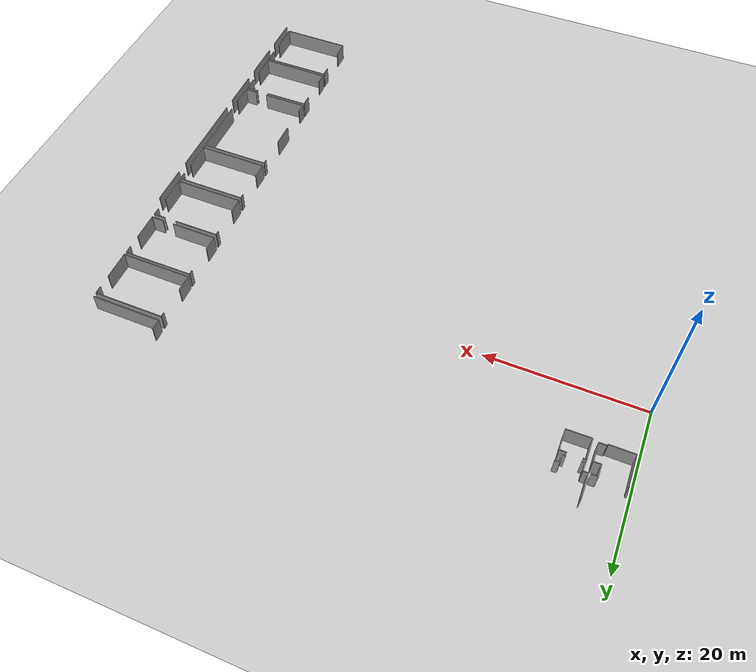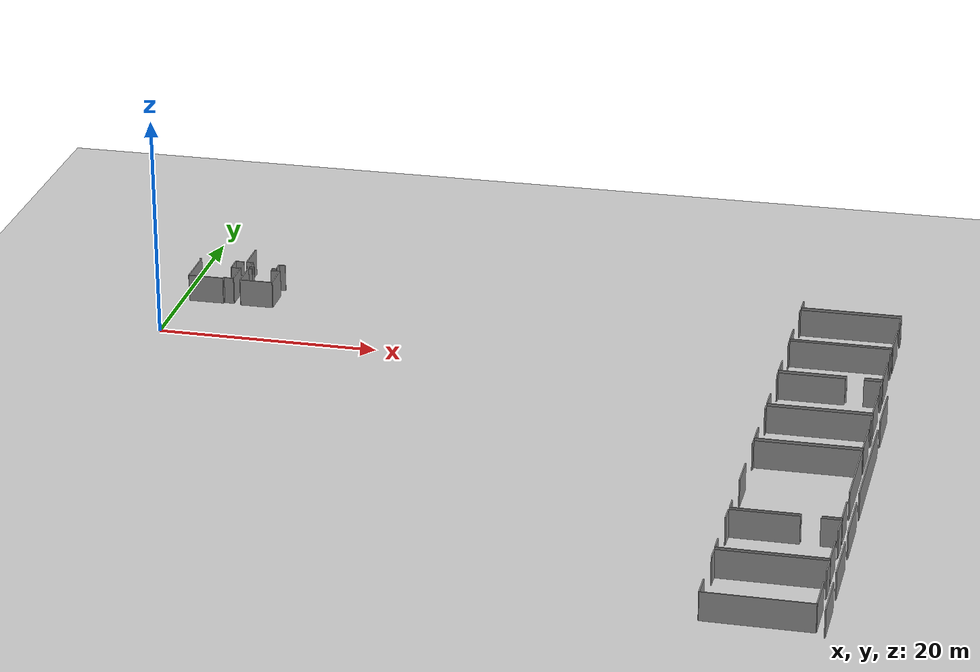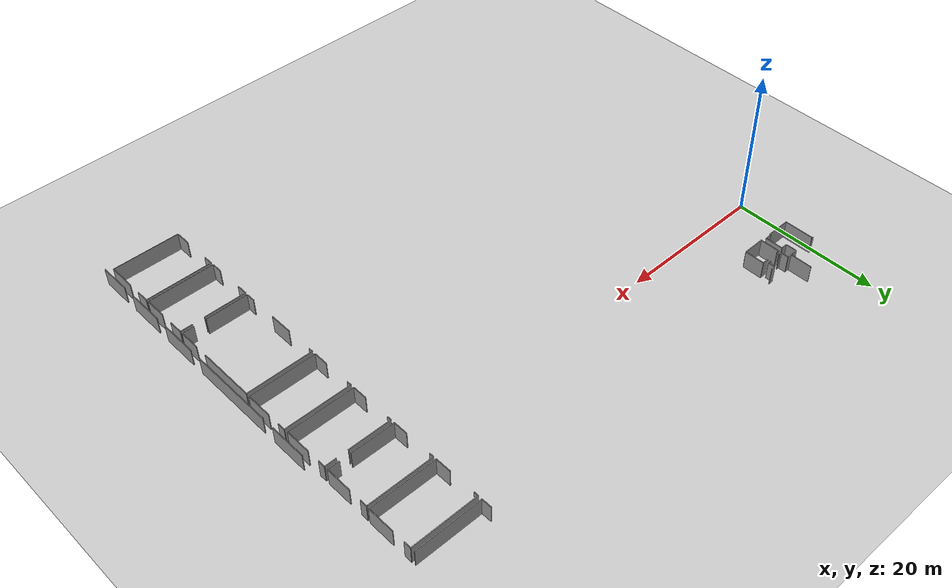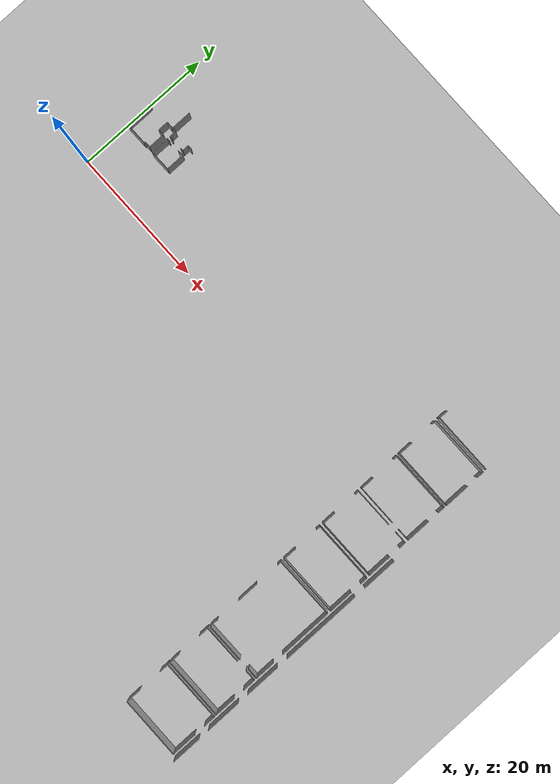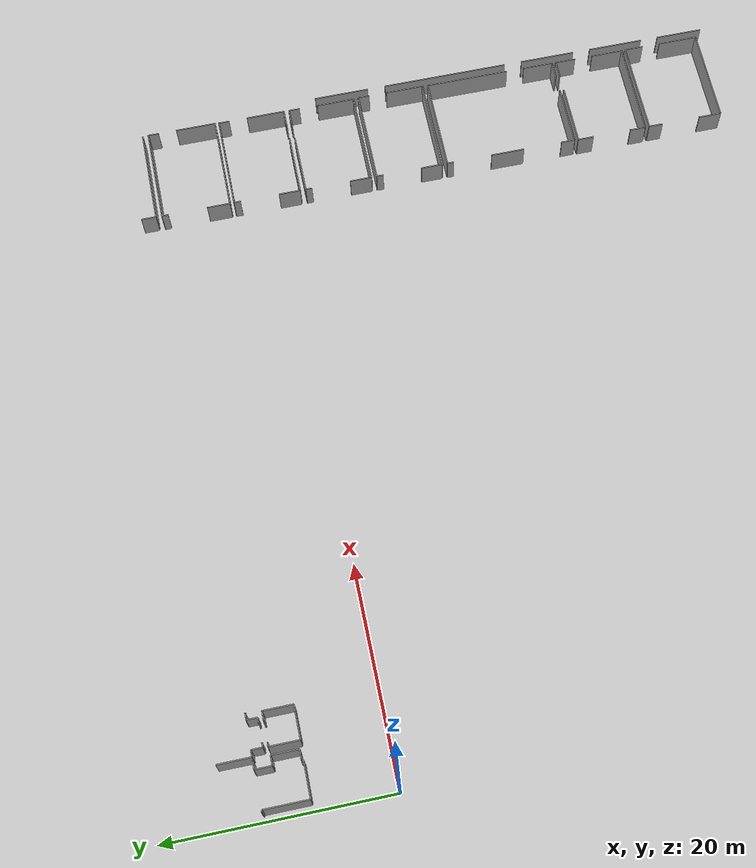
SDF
<sdf version="1.6">
 <world name="default">
  <model name="ground_plane">
   <static>1</static>
   <link name="link">
    <collision name="collision">
     <geometry><plane><normal>0 0 1</normal><size>100 100</size></plane></geometry>
     <surface><friction><ode><mu>100</mu><mu2>50</mu2></ode></friction></surface>
    </collision>
    <visual name="visual">
     <cast_shadows>0</cast_shadows>
     <geometry><plane><normal>0 0 1</normal><size>100 100</size></plane></geometry>
     <material>
      <script><uri>file://media/materials/scripts/gazebo.material</uri><name>Gazebo/Grey</name></script>
     </material>
    </visual>
   </link>
  </model>
  <model name="0510035737_A_40_1_105">
   <static>1</static>
   <link name="Wall_152">
    <collision name="Wall_152_Collision">
     <geometry><box><size>0.780401004099 0.1 2.5</size></box></geometry>
     <pose>0.39020050205 0 1.25 0 0 0</pose>
    </collision>
    <visual name="Wall_152_Visual">
     <pose>0.39020050205 0 1.25 0 0 0</pose>
     <geometry><box><size>0.780401004099 0.1 2.5</size></box></geometry>
     <material>
      <script><uri>file://media/materials/scripts/gazebo.material</uri><name>Gazebo/Grey</name></script>
      <ambient>1 1 1 1</ambient>
     </material>
    </visual>
    <pose>84.8583140034 -34.6795462489 0 0 0 3.14159265359</pose>
   </link>
   <link name="Wall_153">
    <collision name="Wall_153_Collision">
     <geometry><box><size>1.49470941502 0.1 2.5</size></box></geometry>
     <pose>0.747354707508 0 1.25 0 0 0</pose>
    </collision>
    <visual name="Wall_153_Visual">
     <pose>0.747354707508 0 1.25 0 0 0</pose>
     <geometry><box><size>1.49470941502 0.1 2.5</size></box></geometry>
     <material>
      <script><uri>file://media/materials/scripts/gazebo.material</uri><name>Gazebo/Grey</name></script>
      <ambient>1 1 1 1</ambient>
     </material>
    </visual>
    <pose>84.0779129993 -34.6795462489 0 0 0 -1.57079632679</pose>
   </link>
   <link name="Wall_154">
    <collision name="Wall_154_Collision">
     <geometry><box><size>0.878523084745 0.1 2.5</size></box></geometry>
     <pose>0.439261542372 0 1.25 0 0 0</pose>
    </collision>
    <visual name="Wall_154_Visual">
     <pose>0.439261542372 0 1.25 0 0 0</pose>
     <geometry><box><size>0.878523084745 0.1 2.5</size></box></geometry>
     <material>
      <script><uri>file://media/materials/scripts/gazebo.material</uri><name>Gazebo/Grey</name></script>
      <ambient>1 1 1 1</ambient>
     </material>
    </visual>
    <pose>84.0779129993 -36.1742556639 0 0 0 0.0</pose>
   </link>
   <link name="Wall_155">
    <collision name="Wall_155_Collision">
     <geometry><box><size>2.38340059102 0.1 2.5</size></box></geometry>
     <pose>1.19170029551 0 1.25 0 0 0</pose>
    </collision>
    <visual name="Wall_155_Visual">
     <pose>1.19170029551 0 1.25 0 0 0</pose>
     <geometry><box><size>2.38340059102 0.1 2.5</size></box></geometry>
     <material>
      <script><uri>file://media/materials/scripts/gazebo.material</uri><name>Gazebo/Grey</name></script>
      <ambient>1 1 1 1</ambient>
     </material>
    </visual>
    <pose>84.956436084 -36.1742556639 0 0 0 -1.57079632679</pose>
   </link>
   <link name="Wall_156">
    <collision name="Wall_156_Collision">
     <geometry><box><size>0.886149153189 0.1 2.5</size></box></geometry>
     <pose>0.443074576594 0 1.25 0 0 0</pose>
    </collision>
    <visual name="Wall_156_Visual">
     <pose>0.443074576594 0 1.25 0 0 0</pose>
     <geometry><box><size>0.886149153189 0.1 2.5</size></box></geometry>
     <material>
      <script><uri>file://media/materials/scripts/gazebo.material</uri><name>Gazebo/Grey</name></script>
      <ambient>1 1 1 1</ambient>
     </material>
    </visual>
    <pose>84.956436084 -38.557656255 0 0 0 3.14159265359</pose>
   </link>
   <link name="Wall_157">
    <collision name="Wall_157_Collision">
     <geometry><box><size>0.17955428395 0.1 2.5</size></box></geometry>
     <pose>0.089777141975 0 1.25 0 0 0</pose>
    </collision>
    <visual name="Wall_157_Visual">
     <pose>0.089777141975 0 1.25 0 0 0</pose>
     <geometry><box><size>0.17955428395 0.1 2.5</size></box></geometry>
     <material>
      <script><uri>file://media/materials/scripts/gazebo.material</uri><name>Gazebo/Grey</name></script>
      <ambient>1 1 1 1</ambient>
     </material>
    </visual>
    <pose>84.0702869308 -38.557656255 0 0 0 -2.01101567095</pose>
   </link>
   <link name="Wall_158">
    <collision name="Wall_158_Collision">
     <geometry><box><size>3.19710209399 0.1 2.5</size></box></geometry>
     <pose>1.598551047 0 1.25 0 0 0</pose>
    </collision>
    <visual name="Wall_158_Visual">
     <pose>1.598551047 0 1.25 0 0 0</pose>
     <geometry><box><size>3.19710209399 0.1 2.5</size></box></geometry>
     <material>
      <script><uri>file://media/materials/scripts/gazebo.material</uri><name>Gazebo/Grey</name></script>
      <ambient>1 1 1 1</ambient>
     </material>
    </visual>
    <pose>83.9937720441 -38.7200915128 0 0 0 3.14159265359</pose>
   </link>
   <link name="Wall_159">
    <collision name="Wall_159_Collision">
     <geometry><box><size>3.93098408058 0.1 2.5</size></box></geometry>
     <pose>1.96549204029 0 1.25 0 0 0</pose>
    </collision>
    <visual name="Wall_159_Visual">
     <pose>1.96549204029 0 1.25 0 0 0</pose>
     <geometry><box><size>3.93098408058 0.1 2.5</size></box></geometry>
     <material>
      <script><uri>file://media/materials/scripts/gazebo.material</uri><name>Gazebo/Grey</name></script>
      <ambient>1 1 1 1</ambient>
     </material>
    </visual>
    <pose>80.7966699501 -38.7200915128 0 0 0 1.57079632679</pose>
   </link>
   <link name="Wall_160">
    <collision name="Wall_160_Collision">
     <geometry><box><size>0.177620649564 0.1 2.5</size></box></geometry>
     <pose>0.0888103247819 0 1.25 0 0 0</pose>
    </collision>
    <visual name="Wall_160_Visual">
     <pose>0.0888103247819 0 1.25 0 0 0</pose>
     <geometry><box><size>0.177620649564 0.1 2.5</size></box></geometry>
     <material>
      <script><uri>file://media/materials/scripts/gazebo.material</uri><name>Gazebo/Grey</name></script>
      <ambient>1 1 1 1</ambient>
     </material>
    </visual>
    <pose>80.7966699501 -34.7891074322 0 0 0 2.53731518699</pose>
   </link>
   <link name="Wall_193">
    <collision name="Wall_193_Collision">
     <geometry><box><size>2.97213307489 0.1 2.5</size></box></geometry>
     <pose>1.48606653745 0 1.25 0 0 0</pose>
    </collision>
    <visual name="Wall_193_Visual">
     <pose>1.48606653745 0 1.25 0 0 0</pose>
     <geometry><box><size>2.97213307489 0.1 2.5</size></box></geometry>
     <material>
      <script><uri>file://media/materials/scripts/gazebo.material</uri><name>Gazebo/Grey</name></script>
      <ambient>1 1 1 1</ambient>
     </material>
    </visual>
    <pose>85.1120078803 -34.677766833 0 0 0 1.57079632679</pose>
   </link>
   <link name="Wall_202">
    <collision name="Wall_202_Collision">
     <geometry><box><size>0.597883766007 0.1 2.5</size></box></geometry>
     <pose>0.298941883003 0 1.25 0 0 0</pose>
    </collision>
    <visual name="Wall_202_Visual">
     <pose>0.298941883003 0 1.25 0 0 0</pose>
     <geometry><box><size>0.597883766007 0.1 2.5</size></box></geometry>
     <material>
      <script><uri>file://media/materials/scripts/gazebo.material</uri><name>Gazebo/Grey</name></script>
      <ambient>1 1 1 1</ambient>
     </material>
    </visual>
    <pose>88.8022624003 -34.7260652664 0 0 0 3.14159265359</pose>
   </link>
   <link name="Wall_203">
    <collision name="Wall_203_Collision">
     <geometry><box><size>0.944615677926 0.1 2.5</size></box></geometry>
     <pose>0.472307838963 0 1.25 0 0 0</pose>
    </collision>
    <visual name="Wall_203_Visual">
     <pose>0.472307838963 0 1.25 0 0 0</pose>
     <geometry><box><size>0.944615677926 0.1 2.5</size></box></geometry>
     <material>
      <script><uri>file://media/materials/scripts/gazebo.material</uri><name>Gazebo/Grey</name></script>
      <ambient>1 1 1 1</ambient>
     </material>
    </visual>
    <pose>88.2043786343 -34.7260652664 0 0 0 -1.57079632679</pose>
   </link>
   <link name="Wall_204">
    <collision name="Wall_204_Collision">
     <geometry><box><size>0.406723650345 0.1 2.5</size></box></geometry>
     <pose>0.203361825172 0 1.25 0 0 0</pose>
    </collision>
    <visual name="Wall_204_Visual">
     <pose>0.203361825172 0 1.25 0 0 0</pose>
     <geometry><box><size>0.406723650345 0.1 2.5</size></box></geometry>
     <material>
      <script><uri>file://media/materials/scripts/gazebo.material</uri><name>Gazebo/Grey</name></script>
      <ambient>1 1 1 1</ambient>
     </material>
    </visual>
    <pose>88.2043786343 -35.6706809444 0 0 0 3.14159265359</pose>
   </link>
   <link name="Wall_205">
    <collision name="Wall_205_Collision">
     <geometry><box><size>0.397318165931 0.1 2.5</size></box></geometry>
     <pose>0.198659082965 0 1.25 0 0 0</pose>
    </collision>
    <visual name="Wall_205_Visual">
     <pose>0.198659082965 0 1.25 0 0 0</pose>
     <geometry><box><size>0.397318165931 0.1 2.5</size></box></geometry>
     <material>
      <script><uri>file://media/materials/scripts/gazebo.material</uri><name>Gazebo/Grey</name></script>
      <ambient>1 1 1 1</ambient>
     </material>
    </visual>
    <pose>86.1011089575 -35.6706809444 0 0 0 3.14159265359</pose>
   </link>
   <link name="Wall_206">
    <collision name="Wall_206_Collision">
     <geometry><box><size>0.991134695434 0.1 2.5</size></box></geometry>
     <pose>0.495567347717 0 1.25 0 0 0</pose>
    </collision>
    <visual name="Wall_206_Visual">
     <pose>0.495567347717 0 1.25 0 0 0</pose>
     <geometry><box><size>0.991134695434 0.1 2.5</size></box></geometry>
     <material>
      <script><uri>file://media/materials/scripts/gazebo.material</uri><name>Gazebo/Grey</name></script>
      <ambient>1 1 1 1</ambient>
     </material>
    </visual>
    <pose>85.7037907915 -35.6706809444 0 0 0 1.57079632679</pose>
   </link>
   <link name="Wall_207">
    <collision name="Wall_207_Collision">
     <geometry><box><size>0.591785586484 0.1 2.5</size></box></geometry>
     <pose>0.295892793242 0 1.25 0 0 0</pose>
    </collision>
    <visual name="Wall_207_Visual">
     <pose>0.295892793242 0 1.25 0 0 0</pose>
     <geometry><box><size>0.591785586484 0.1 2.5</size></box></geometry>
     <material>
      <script><uri>file://media/materials/scripts/gazebo.material</uri><name>Gazebo/Grey</name></script>
      <ambient>1 1 1 1</ambient>
     </material>
    </visual>
    <pose>85.7037907915 -34.6795462489 0 0 0 3.1385857898</pose>
   </link>
   <link name="Wall_208">
    <collision name="Wall_208_Collision">
     <geometry><box><size>2.67039496679 0.1 2.5</size></box></geometry>
     <pose>1.3351974834 0 1.25 0 0 0</pose>
    </collision>
    <visual name="Wall_208_Visual">
     <pose>1.3351974834 0 1.25 0 0 0</pose>
     <geometry><box><size>2.67039496679 0.1 2.5</size></box></geometry>
     <material>
      <script><uri>file://media/materials/scripts/gazebo.material</uri><name>Gazebo/Grey</name></script>
      <ambient>1 1 1 1</ambient>
     </material>
    </visual>
    <pose>85.6651520447 -38.7734739919 0 0 0 1.57079632679</pose>
   </link>
   <link name="Wall_209">
    <collision name="Wall_209_Collision">
     <geometry><box><size>0.373677353754 0.1 2.5</size></box></geometry>
     <pose>0.186838676877 0 1.25 0 0 0</pose>
    </collision>
    <visual name="Wall_209_Visual">
     <pose>0.186838676877 0 1.25 0 0 0</pose>
     <geometry><box><size>0.373677353754 0.1 2.5</size></box></geometry>
     <material>
      <script><uri>file://media/materials/scripts/gazebo.material</uri><name>Gazebo/Grey</name></script>
      <ambient>1 1 1 1</ambient>
     </material>
    </visual>
    <pose>85.6651520447 -36.1030790251 0 0 0 0.0</pose>
   </link>
   <link name="Wall_210">
    <collision name="Wall_210_Collision">
     <geometry><box><size>0.846239394999 0.1 2.5</size></box></geometry>
     <pose>0.423119697499 0 1.25 0 0 0</pose>
    </collision>
    <visual name="Wall_210_Visual">
     <pose>0.423119697499 0 1.25 0 0 0</pose>
     <geometry><box><size>0.846239394999 0.1 2.5</size></box></geometry>
     <material>
      <script><uri>file://media/materials/scripts/gazebo.material</uri><name>Gazebo/Grey</name></script>
      <ambient>1 1 1 1</ambient>
     </material>
    </visual>
    <pose>87.8192621779 -36.1030790251 0 0 0 0.0</pose>
   </link>
   <link name="Wall_211">
    <collision name="Wall_211_Collision">
     <geometry><box><size>2.64853357059 0.1 2.5</size></box></geometry>
     <pose>1.32426678529 0 1.25 0 0 0</pose>
    </collision>
    <visual name="Wall_211_Visual">
     <pose>1.32426678529 0 1.25 0 0 0</pose>
     <geometry><box><size>2.64853357059 0.1 2.5</size></box></geometry>
     <material>
      <script><uri>file://media/materials/scripts/gazebo.material</uri><name>Gazebo/Grey</name></script>
      <ambient>1 1 1 1</ambient>
     </material>
    </visual>
    <pose>88.6655015729 -36.1030790251 0 0 0 -1.57079632679</pose>
   </link>
   <link name="Wall_212">
    <collision name="Wall_212_Collision">
     <geometry><box><size>3.00042917124 0.1 2.5</size></box></geometry>
     <pose>1.50021458562 0 1.25 0 0 0</pose>
    </collision>
    <visual name="Wall_212_Visual">
     <pose>1.50021458562 0 1.25 0 0 0</pose>
     <geometry><box><size>3.00042917124 0.1 2.5</size></box></geometry>
     <material>
      <script><uri>file://media/materials/scripts/gazebo.material</uri><name>Gazebo/Grey</name></script>
      <ambient>1 1 1 1</ambient>
     </material>
    </visual>
    <pose>88.6655015729 -38.7516125957 0 0 0 -3.13430649938</pose>
   </link>
   <link name="Wall_439">
    <collision name="Wall_439_Collision">
     <geometry><box><size>4.36312795907 0.1 2.5</size></box></geometry>
     <pose>2.18156397954 0 1.25 0 0 0</pose>
    </collision>
    <visual name="Wall_439_Visual">
     <pose>2.18156397954 0 1.25 0 0 0</pose>
     <geometry><box><size>4.36312795907 0.1 2.5</size></box></geometry>
     <material>
      <script><uri>file://media/materials/scripts/gazebo.material</uri><name>Gazebo/Grey</name></script>
      <ambient>1 1 1 1</ambient>
     </material>
    </visual>
    <pose>146.378062343 -89.6858695307 0 0 0 1.57079632679</pose>
   </link>
   <link name="Wall_440">
    <collision name="Wall_440_Collision">
     <geometry><box><size>5.16894919132 0.1 2.5</size></box></geometry>
     <pose>2.58447459566 0 1.25 0 0 0</pose>
    </collision>
    <visual name="Wall_440_Visual">
     <pose>2.58447459566 0 1.25 0 0 0</pose>
     <geometry><box><size>5.16894919132 0.1 2.5</size></box></geometry>
     <material>
      <script><uri>file://media/materials/scripts/gazebo.material</uri><name>Gazebo/Grey</name></script>
      <ambient>1 1 1 1</ambient>
     </material>
    </visual>
    <pose>146.378062343 -83.6363636364 0 0 0 1.57079632679</pose>
   </link>
   <link name="Wall_441">
    <collision name="Wall_441_Collision">
     <geometry><box><size>5.17276222554 0.1 2.5</size></box></geometry>
     <pose>2.58638111277 0 1.25 0 0 0</pose>
    </collision>
    <visual name="Wall_441_Visual">
     <pose>2.58638111277 0 1.25 0 0 0</pose>
     <geometry><box><size>5.17276222554 0.1 2.5</size></box></geometry>
     <material>
      <script><uri>file://media/materials/scripts/gazebo.material</uri><name>Gazebo/Grey</name></script>
      <ambient>1 1 1 1</ambient>
     </material>
    </visual>
    <pose>146.378062343 -76.7863747577 0 0 0 1.57079632679</pose>
   </link>
   <link name="Wall_442">
    <collision name="Wall_442_Collision">
     <geometry><box><size>11.8877696927 0.1 2.5</size></box></geometry>
     <pose>5.94388484637 0 1.25 0 0 0</pose>
    </collision>
    <visual name="Wall_442_Visual">
     <pose>5.94388484637 0 1.25 0 0 0</pose>
     <geometry><box><size>11.8877696927 0.1 2.5</size></box></geometry>
     <material>
      <script><uri>file://media/materials/scripts/gazebo.material</uri><name>Gazebo/Grey</name></script>
      <ambient>1 1 1 1</ambient>
     </material>
    </visual>
    <pose>146.378062343 -69.9188459216 0 0 0 1.57079632679</pose>
   </link>
   <link name="Wall_443">
    <collision name="Wall_443_Collision">
     <geometry><box><size>5.1417495472 0.1 2.5</size></box></geometry>
     <pose>2.5708747736 0 1.25 0 0 0</pose>
    </collision>
    <visual name="Wall_443_Visual">
     <pose>2.5708747736 0 1.25 0 0 0</pose>
     <geometry><box><size>5.1417495472 0.1 2.5</size></box></geometry>
     <material>
      <script><uri>file://media/materials/scripts/gazebo.material</uri><name>Gazebo/Grey</name></script>
      <ambient>1 1 1 1</ambient>
     </material>
    </visual>
    <pose>146.378062343 -56.3228368975 0 0 0 1.57079632679</pose>
   </link>
   <link name="Wall_457">
    <collision name="Wall_457_Collision">
     <geometry><box><size>1.37370912904 0.1 2.5</size></box></geometry>
     <pose>0.68685456452 0 1.25 0 0 0</pose>
    </collision>
    <visual name="Wall_457_Visual">
     <pose>0.68685456452 0 1.25 0 0 0</pose>
     <geometry><box><size>1.37370912904 0.1 2.5</size></box></geometry>
     <material>
      <script><uri>file://media/materials/scripts/gazebo.material</uri><name>Gazebo/Grey</name></script>
      <ambient>1 1 1 1</ambient>
     </material>
    </visual>
    <pose>136.603222014 -34.2786692511 0 0 0 1.57079632679</pose>
   </link>
   <link name="Wall_464">
    <collision name="Wall_464_Collision">
     <geometry><box><size>9.00743079128 0.1 2.5</size></box></geometry>
     <pose>4.50371539564 0 1.25 0 0 0</pose>
    </collision>
    <visual name="Wall_464_Visual">
     <pose>4.50371539564 0 1.25 0 0 0</pose>
     <geometry><box><size>9.00743079128 0.1 2.5</size></box></geometry>
     <material>
      <script><uri>file://media/materials/scripts/gazebo.material</uri><name>Gazebo/Grey</name></script>
      <ambient>1 1 1 1</ambient>
     </material>
    </visual>
    <pose>145.610625655 -34.3007848495 0 0 0 3.13913738957</pose>
   </link>
   <link name="Wall_480">
    <collision name="Wall_480_Collision">
     <geometry><box><size>2.14317943504 0.1 2.5</size></box></geometry>
     <pose>1.07158971752 0 1.25 0 0 0</pose>
    </collision>
    <visual name="Wall_480_Visual">
     <pose>1.07158971752 0 1.25 0 0 0</pose>
     <geometry><box><size>2.14317943504 0.1 2.5</size></box></geometry>
     <material>
      <script><uri>file://media/materials/scripts/gazebo.material</uri><name>Gazebo/Grey</name></script>
      <ambient>1 1 1 1</ambient>
     </material>
    </visual>
    <pose>136.581360618 -41.246353786 0 0 0 1.57079632679</pose>
   </link>
   <link name="Wall_481">
    <collision name="Wall_481_Collision">
     <geometry><box><size>0.593562327222 0.1 2.5</size></box></geometry>
     <pose>0.296781163611 0 1.25 0 0 0</pose>
    </collision>
    <visual name="Wall_481_Visual">
     <pose>0.296781163611 0 1.25 0 0 0</pose>
     <geometry><box><size>0.593562327222 0.1 2.5</size></box></geometry>
     <material>
      <script><uri>file://media/materials/scripts/gazebo.material</uri><name>Gazebo/Grey</name></script>
      <ambient>1 1 1 1</ambient>
     </material>
    </visual>
    <pose>136.581360618 -35.4327476089 0 0 0 1.57079632679</pose>
   </link>
   <link name="Wall_482">
    <collision name="Wall_482_Collision">
     <geometry><box><size>9.03028184678 0.1 2.5</size></box></geometry>
     <pose>4.51514092339 0 1.25 0 0 0</pose>
    </collision>
    <visual name="Wall_482_Visual">
     <pose>4.51514092339 0 1.25 0 0 0</pose>
     <geometry><box><size>9.03028184678 0.1 2.5</size></box></geometry>
     <material>
      <script><uri>file://media/materials/scripts/gazebo.material</uri><name>Gazebo/Grey</name></script>
      <ambient>1 1 1 1</ambient>
     </material>
    </visual>
    <pose>136.581360618 -34.8391852817 0 0 0 0.0</pose>
   </link>
   <link name="Wall_483">
    <collision name="Wall_483_Collision">
     <geometry><box><size>0.986304852086 0.1 2.5</size></box></geometry>
     <pose>0.493152426043 0 1.25 0 0 0</pose>
    </collision>
    <visual name="Wall_483_Visual">
     <pose>0.493152426043 0 1.25 0 0 0</pose>
     <geometry><box><size>0.986304852086 0.1 2.5</size></box></geometry>
     <material>
      <script><uri>file://media/materials/scripts/gazebo.material</uri><name>Gazebo/Grey</name></script>
      <ambient>1 1 1 1</ambient>
     </material>
    </visual>
    <pose>145.611642464 -34.8391852817 0 0 0 -1.57079632679</pose>
   </link>
   <link name="Wall_484">
    <collision name="Wall_484_Collision">
     <geometry><box><size>3.74490801055 0.1 2.5</size></box></geometry>
     <pose>1.87245400527 0 1.25 0 0 0</pose>
    </collision>
    <visual name="Wall_484_Visual">
     <pose>1.87245400527 0 1.25 0 0 0</pose>
     <geometry><box><size>3.74490801055 0.1 2.5</size></box></geometry>
     <material>
      <script><uri>file://media/materials/scripts/gazebo.material</uri><name>Gazebo/Grey</name></script>
      <ambient>1 1 1 1</ambient>
     </material>
    </visual>
    <pose>145.611642464 -37.531695847 0 0 0 -1.57079632679</pose>
   </link>
   <link name="Wall_485">
    <collision name="Wall_485_Collision">
     <geometry><box><size>9.03033251321 0.1 2.5</size></box></geometry>
     <pose>4.5151662566 0 1.25 0 0 0</pose>
    </collision>
    <visual name="Wall_485_Visual">
     <pose>4.5151662566 0 1.25 0 0 0</pose>
     <geometry><box><size>9.03033251321 0.1 2.5</size></box></geometry>
     <material>
      <script><uri>file://media/materials/scripts/gazebo.material</uri><name>Gazebo/Grey</name></script>
      <ambient>1 1 1 1</ambient>
     </material>
    </visual>
    <pose>145.611642464 -41.2766038575 0 0 0 3.13824281813</pose>
   </link>
   <link name="Wall_486">
    <collision name="Wall_486_Collision">
     <geometry><box><size>2.01099424867 0.1 2.5</size></box></geometry>
     <pose>1.00549712434 0 1.25 0 0 0</pose>
    </collision>
    <visual name="Wall_486_Visual">
     <pose>1.00549712434 0 1.25 0 0 0</pose>
     <geometry><box><size>2.01099424867 0.1 2.5</size></box></geometry>
     <material>
      <script><uri>file://media/materials/scripts/gazebo.material</uri><name>Gazebo/Grey</name></script>
      <ambient>1 1 1 1</ambient>
     </material>
    </visual>
    <pose>136.594324934 -47.9328905977 0 0 0 1.57079632679</pose>
   </link>
   <link name="Wall_487">
    <collision name="Wall_487_Collision">
     <geometry><box><size>0.614915318865 0.1 2.5</size></box></geometry>
     <pose>0.307457659432 0 1.25 0 0 0</pose>
    </collision>
    <visual name="Wall_487_Visual">
     <pose>0.307457659432 0 1.25 0 0 0</pose>
     <geometry><box><size>0.614915318865 0.1 2.5</size></box></geometry>
     <material>
      <script><uri>file://media/materials/scripts/gazebo.material</uri><name>Gazebo/Grey</name></script>
      <ambient>1 1 1 1</ambient>
     </material>
    </visual>
    <pose>136.594324934 -42.2654507324 0 0 0 1.57079632679</pose>
   </link>
   <link name="Wall_488">
    <collision name="Wall_488_Collision">
     <geometry><box><size>8.98045819961 0.1 2.5</size></box></geometry>
     <pose>4.49022909981 0 1.25 0 0 0</pose>
    </collision>
    <visual name="Wall_488_Visual">
     <pose>4.49022909981 0 1.25 0 0 0</pose>
     <geometry><box><size>8.98045819961 0.1 2.5</size></box></geometry>
     <material>
      <script><uri>file://media/materials/scripts/gazebo.material</uri><name>Gazebo/Grey</name></script>
      <ambient>1 1 1 1</ambient>
     </material>
    </visual>
    <pose>136.594324934 -41.6505354136 0 0 0 0.0</pose>
   </link>
   <link name="Wall_489">
    <collision name="Wall_489_Collision">
     <geometry><box><size>0.996472943345 0.1 2.5</size></box></geometry>
     <pose>0.498236471672 0 1.25 0 0 0</pose>
    </collision>
    <visual name="Wall_489_Visual">
     <pose>0.498236471672 0 1.25 0 0 0</pose>
     <geometry><box><size>0.996472943345 0.1 2.5</size></box></geometry>
     <material>
      <script><uri>file://media/materials/scripts/gazebo.material</uri><name>Gazebo/Grey</name></script>
      <ambient>1 1 1 1</ambient>
     </material>
    </visual>
    <pose>145.574783134 -41.6505354136 0 0 0 -1.57079632679</pose>
   </link>
   <link name="Wall_490">
    <collision name="Wall_490_Collision">
     <geometry><box><size>3.58984461886 0.1 2.5</size></box></geometry>
     <pose>1.79492230943 0 1.25 0 0 0</pose>
    </collision>
    <visual name="Wall_490_Visual">
     <pose>1.79492230943 0 1.25 0 0 0</pose>
     <geometry><box><size>3.58984461886 0.1 2.5</size></box></geometry>
     <material>
      <script><uri>file://media/materials/scripts/gazebo.material</uri><name>Gazebo/Grey</name></script>
      <ambient>1 1 1 1</ambient>
     </material>
    </visual>
    <pose>145.574783134 -44.37660068 0 0 0 -1.57079632679</pose>
   </link>
   <link name="Wall_491">
    <collision name="Wall_491_Collision">
     <geometry><box><size>1.57376632455 0.1 2.5</size></box></geometry>
     <pose>0.786883162276 0 1.25 0 0 0</pose>
    </collision>
    <visual name="Wall_491_Visual">
     <pose>0.786883162276 0 1.25 0 0 0</pose>
     <geometry><box><size>1.57376632455 0.1 2.5</size></box></geometry>
     <material>
      <script><uri>file://media/materials/scripts/gazebo.material</uri><name>Gazebo/Grey</name></script>
      <ambient>1 1 1 1</ambient>
     </material>
    </visual>
    <pose>145.574783134 -47.9664452988 0 0 0 3.14159265359</pose>
   </link>
   <link name="Wall_492">
    <collision name="Wall_492_Collision">
     <geometry><box><size>5.92097461943 0.1 2.5</size></box></geometry>
     <pose>2.96048730971 0 1.25 0 0 0</pose>
    </collision>
    <visual name="Wall_492_Visual">
     <pose>2.96048730971 0 1.25 0 0 0</pose>
     <geometry><box><size>5.92097461943 0.1 2.5</size></box></geometry>
     <material>
      <script><uri>file://media/materials/scripts/gazebo.material</uri><name>Gazebo/Grey</name></script>
      <ambient>1 1 1 1</ambient>
     </material>
    </visual>
    <pose>142.515204474 -47.9664452988 0 0 0 3.13592553239</pose>
   </link>
   <link name="Wall_493">
    <collision name="Wall_493_Collision">
     <geometry><box><size>2.04734517492 0.1 2.5</size></box></geometry>
     <pose>1.02367258746 0 1.25 0 0 0</pose>
    </collision>
    <visual name="Wall_493_Visual">
     <pose>1.02367258746 0 1.25 0 0 0</pose>
     <geometry><box><size>2.04734517492 0.1 2.5</size></box></geometry>
     <material>
      <script><uri>file://media/materials/scripts/gazebo.material</uri><name>Gazebo/Grey</name></script>
      <ambient>1 1 1 1</ambient>
     </material>
    </visual>
    <pose>136.600425789 -54.7704235646 0 0 0 1.57079632679</pose>
   </link>
   <link name="Wall_494">
    <collision name="Wall_494_Collision">
     <geometry><box><size>0.593816529503 0.1 2.5</size></box></geometry>
     <pose>0.296908264752 0 1.25 0 0 0</pose>
    </collision>
    <visual name="Wall_494_Visual">
     <pose>0.296908264752 0 1.25 0 0 0</pose>
     <geometry><box><size>0.593816529503 0.1 2.5</size></box></geometry>
     <material>
      <script><uri>file://media/materials/scripts/gazebo.material</uri><name>Gazebo/Grey</name></script>
      <ambient>1 1 1 1</ambient>
     </material>
    </visual>
    <pose>136.600425789 -49.0704458073 0 0 0 1.57079632679</pose>
   </link>
   <link name="Wall_495">
    <collision name="Wall_495_Collision">
     <geometry><box><size>5.82148644784 0.1 2.5</size></box></geometry>
     <pose>2.91074322392 0 1.25 0 0 0</pose>
    </collision>
    <visual name="Wall_495_Visual">
     <pose>2.91074322392 0 1.25 0 0 0</pose>
     <geometry><box><size>5.82148644784 0.1 2.5</size></box></geometry>
     <material>
      <script><uri>file://media/materials/scripts/gazebo.material</uri><name>Gazebo/Grey</name></script>
      <ambient>1 1 1 1</ambient>
     </material>
    </visual>
    <pose>136.600425789 -48.4766292777 0 0 0 0.0</pose>
   </link>
   <link name="Wall_496">
    <collision name="Wall_496_Collision">
     <geometry><box><size>1.54961710781 0.1 2.5</size></box></geometry>
     <pose>0.774808553907 0 1.25 0 0 0</pose>
    </collision>
    <visual name="Wall_496_Visual">
     <pose>0.774808553907 0 1.25 0 0 0</pose>
     <geometry><box><size>1.54961710781 0.1 2.5</size></box></geometry>
     <material>
      <script><uri>file://media/materials/scripts/gazebo.material</uri><name>Gazebo/Grey</name></script>
      <ambient>1 1 1 1</ambient>
     </material>
    </visual>
    <pose>144.021352992 -48.4766292777 0 0 0 0.0</pose>
   </link>
   <link name="Wall_497">
    <collision name="Wall_497_Collision">
     <geometry><box><size>1.00104858441 0.1 2.5</size></box></geometry>
     <pose>0.500524292206 0 1.25 0 0 0</pose>
    </collision>
    <visual name="Wall_497_Visual">
     <pose>0.500524292206 0 1.25 0 0 0</pose>
     <geometry><box><size>1.00104858441 0.1 2.5</size></box></geometry>
     <material>
      <script><uri>file://media/materials/scripts/gazebo.material</uri><name>Gazebo/Grey</name></script>
      <ambient>1 1 1 1</ambient>
     </material>
    </visual>
    <pose>145.570970099 -48.4766292777 0 0 0 -1.57079632679</pose>
   </link>
   <link name="Wall_498">
    <collision name="Wall_498_Collision">
     <geometry><box><size>3.54637602872 0.1 2.5</size></box></geometry>
     <pose>1.77318801436 0 1.25 0 0 0</pose>
    </collision>
    <visual name="Wall_498_Visual">
     <pose>1.77318801436 0 1.25 0 0 0</pose>
     <geometry><box><size>3.54637602872 0.1 2.5</size></box></geometry>
     <material>
      <script><uri>file://media/materials/scripts/gazebo.material</uri><name>Gazebo/Grey</name></script>
      <ambient>1 1 1 1</ambient>
     </material>
    </visual>
    <pose>145.570970099 -51.2367576499 0 0 0 -1.57079632679</pose>
   </link>
   <link name="Wall_499">
    <collision name="Wall_499_Collision">
     <geometry><box><size>8.97055331493 0.1 2.5</size></box></geometry>
     <pose>4.48527665747 0 1.25 0 0 0</pose>
    </collision>
    <visual name="Wall_499_Visual">
     <pose>4.48527665747 0 1.25 0 0 0</pose>
     <geometry><box><size>8.97055331493 0.1 2.5</size></box></geometry>
     <material>
      <script><uri>file://media/materials/scripts/gazebo.material</uri><name>Gazebo/Grey</name></script>
      <ambient>1 1 1 1</ambient>
     </material>
    </visual>
    <pose>145.570970099 -54.7831336786 0 0 0 3.14017578242</pose>
   </link>
   <link name="Wall_500">
    <collision name="Wall_500_Collision">
     <geometry><box><size>2.00972323727 0.1 2.5</size></box></geometry>
     <pose>1.00486161863 0 1.25 0 0 0</pose>
    </collision>
    <visual name="Wall_500_Visual">
     <pose>1.00486161863 0 1.25 0 0 0</pose>
     <geometry><box><size>2.00972323727 0.1 2.5</size></box></geometry>
     <material>
      <script><uri>file://media/materials/scripts/gazebo.material</uri><name>Gazebo/Grey</name></script>
      <ambient>1 1 1 1</ambient>
     </material>
    </visual>
    <pose>136.600425789 -61.5952464173 0 0 0 1.57079632679</pose>
   </link>
   <link name="Wall_501">
    <collision name="Wall_501_Collision">
     <geometry><box><size>0.61923675765 0.1 2.5</size></box></geometry>
     <pose>0.309618378825 0 1.25 0 0 0</pose>
    </collision>
    <visual name="Wall_501_Visual">
     <pose>0.309618378825 0 1.25 0 0 0</pose>
     <geometry><box><size>0.61923675765 0.1 2.5</size></box></geometry>
     <material>
      <script><uri>file://media/materials/scripts/gazebo.material</uri><name>Gazebo/Grey</name></script>
      <ambient>1 1 1 1</ambient>
     </material>
    </visual>
    <pose>136.600425789 -55.89526866 0 0 0 1.57079632679</pose>
   </link>
   <link name="Wall_502">
    <collision name="Wall_502_Collision">
     <geometry><box><size>9.02392678974 0.1 2.5</size></box></geometry>
     <pose>4.51196339487 0 1.25 0 0 0</pose>
    </collision>
    <visual name="Wall_502_Visual">
     <pose>4.51196339487 0 1.25 0 0 0</pose>
     <geometry><box><size>9.02392678974 0.1 2.5</size></box></geometry>
     <material>
      <script><uri>file://media/materials/scripts/gazebo.material</uri><name>Gazebo/Grey</name></script>
      <ambient>1 1 1 1</ambient>
     </material>
    </visual>
    <pose>136.600425789 -55.2760319024 0 0 0 0.0</pose>
   </link>
   <link name="Wall_503">
    <collision name="Wall_503_Collision">
     <geometry><box><size>1.04883861333 0.1 2.5</size></box></geometry>
     <pose>0.524419306663 0 1.25 0 0 0</pose>
    </collision>
    <visual name="Wall_503_Visual">
     <pose>0.524419306663 0 1.25 0 0 0</pose>
     <geometry><box><size>1.04883861333 0.1 2.5</size></box></geometry>
     <material>
      <script><uri>file://media/materials/scripts/gazebo.material</uri><name>Gazebo/Grey</name></script>
      <ambient>1 1 1 1</ambient>
     </material>
    </visual>
    <pose>145.624352579 -55.2760319024 0 0 0 -1.57079632679</pose>
   </link>
   <link name="Wall_504">
    <collision name="Wall_504_Collision">
     <geometry><box><size>3.57510088653 0.1 2.5</size></box></geometry>
     <pose>1.78755044327 0 1.25 0 0 0</pose>
    </collision>
    <visual name="Wall_504_Visual">
     <pose>1.78755044327 0 1.25 0 0 0</pose>
     <geometry><box><size>3.57510088653 0.1 2.5</size></box></geometry>
     <material>
      <script><uri>file://media/materials/scripts/gazebo.material</uri><name>Gazebo/Grey</name></script>
      <ambient>1 1 1 1</ambient>
     </material>
    </visual>
    <pose>145.624352579 -58.0282800038 0 0 0 -1.57079632679</pose>
   </link>
   <link name="Wall_505">
    <collision name="Wall_505_Collision">
     <geometry><box><size>9.02393045609 0.1 2.5</size></box></geometry>
     <pose>4.51196522804 0 1.25 0 0 0</pose>
    </collision>
    <visual name="Wall_505_Visual">
     <pose>4.51196522804 0 1.25 0 0 0</pose>
     <geometry><box><size>9.02393045609 0.1 2.5</size></box></geometry>
     <material>
      <script><uri>file://media/materials/scripts/gazebo.material</uri><name>Gazebo/Grey</name></script>
      <ambient>1 1 1 1</ambient>
     </material>
    </visual>
    <pose>145.624352579 -61.6033808903 0 0 0 3.14069121999</pose>
   </link>
   <link name="Wall_506">
    <collision name="Wall_506_Collision">
     <geometry><box><size>1.26465635029 0.1 2.5</size></box></geometry>
     <pose>0.632328175145 0 1.25 0 0 0</pose>
    </collision>
    <visual name="Wall_506_Visual">
     <pose>0.632328175145 0 1.25 0 0 0</pose>
     <geometry><box><size>1.26465635029 0.1 2.5</size></box></geometry>
     <material>
      <script><uri>file://media/materials/scripts/gazebo.material</uri><name>Gazebo/Grey</name></script>
      <ambient>1 1 1 1</ambient>
     </material>
    </visual>
    <pose>136.602967812 -74.5059260907 0 0 0 1.57079632679</pose>
   </link>
   <link name="Wall_507">
    <collision name="Wall_507_Collision">
     <geometry><box><size>3.1393981761 0.1 2.5</size></box></geometry>
     <pose>1.56969908805 0 1.25 0 0 0</pose>
    </collision>
    <visual name="Wall_507_Visual">
     <pose>1.56969908805 0 1.25 0 0 0</pose>
     <geometry><box><size>3.1393981761 0.1 2.5</size></box></geometry>
     <material>
      <script><uri>file://media/materials/scripts/gazebo.material</uri><name>Gazebo/Grey</name></script>
      <ambient>1 1 1 1</ambient>
     </material>
    </visual>
    <pose>136.602967812 -69.549744209 0 0 0 1.57079632679</pose>
   </link>
   <link name="Wall_508">
    <collision name="Wall_508_Collision">
     <geometry><box><size>0.595850147755 0.1 2.5</size></box></geometry>
     <pose>0.297925073878 0 1.25 0 0 0</pose>
    </collision>
    <visual name="Wall_508_Visual">
     <pose>0.297925073878 0 1.25 0 0 0</pose>
     <geometry><box><size>0.595850147755 0.1 2.5</size></box></geometry>
     <material>
      <script><uri>file://media/materials/scripts/gazebo.material</uri><name>Gazebo/Grey</name></script>
      <ambient>1 1 1 1</ambient>
     </material>
    </visual>
    <pose>136.602967812 -62.7040767691 0 0 0 1.57079632679</pose>
   </link>
   <link name="Wall_509">
    <collision name="Wall_509_Collision">
     <geometry><box><size>8.99672714563 0.1 2.5</size></box></geometry>
     <pose>4.49836357281 0 1.25 0 0 0</pose>
    </collision>
    <visual name="Wall_509_Visual">
     <pose>4.49836357281 0 1.25 0 0 0</pose>
     <geometry><box><size>8.99672714563 0.1 2.5</size></box></geometry>
     <material>
      <script><uri>file://media/materials/scripts/gazebo.material</uri><name>Gazebo/Grey</name></script>
      <ambient>1 1 1 1</ambient>
     </material>
    </visual>
    <pose>136.602967812 -62.1082266213 0 0 0 0.0</pose>
   </link>
   <link name="Wall_510">
    <collision name="Wall_510_Collision">
     <geometry><box><size>7.84849544025 0.1 2.5</size></box></geometry>
     <pose>3.92424772012 0 1.25 0 0 0</pose>
    </collision>
    <visual name="Wall_510_Visual">
     <pose>3.92424772012 0 1.25 0 0 0</pose>
     <geometry><box><size>7.84849544025 0.1 2.5</size></box></geometry>
     <material>
      <script><uri>file://media/materials/scripts/gazebo.material</uri><name>Gazebo/Grey</name></script>
      <ambient>1 1 1 1</ambient>
     </material>
    </visual>
    <pose>145.599694957 -62.1082266213 0 0 0 -1.57079632679</pose>
   </link>
   <link name="Wall_511">
    <collision name="Wall_511_Collision">
     <geometry><box><size>2.84477773188 0.1 2.5</size></box></geometry>
     <pose>1.42238886594 0 1.25 0 0 0</pose>
    </collision>
    <visual name="Wall_511_Visual">
     <pose>1.42238886594 0 1.25 0 0 0</pose>
     <geometry><box><size>2.84477773188 0.1 2.5</size></box></geometry>
     <material>
      <script><uri>file://media/materials/scripts/gazebo.material</uri><name>Gazebo/Grey</name></script>
      <ambient>1 1 1 1</ambient>
     </material>
    </visual>
    <pose>145.599694957 -71.6563185155 0 0 0 -1.57079632679</pose>
   </link>
   <link name="Wall_512">
    <collision name="Wall_512_Collision">
     <geometry><box><size>1.58037558387 0.1 2.5</size></box></geometry>
     <pose>0.790187791935 0 1.25 0 0 0</pose>
    </collision>
    <visual name="Wall_512_Visual">
     <pose>0.790187791935 0 1.25 0 0 0</pose>
     <geometry><box><size>1.58037558387 0.1 2.5</size></box></geometry>
     <material>
      <script><uri>file://media/materials/scripts/gazebo.material</uri><name>Gazebo/Grey</name></script>
      <ambient>1 1 1 1</ambient>
     </material>
    </visual>
    <pose>145.599694957 -74.5010962473 0 0 0 3.14159265359</pose>
   </link>
   <link name="Wall_513">
    <collision name="Wall_513_Collision">
     <geometry><box><size>5.77013960837 0.1 2.5</size></box></geometry>
     <pose>2.88506980419 0 1.25 0 0 0</pose>
    </collision>
    <visual name="Wall_513_Visual">
     <pose>2.88506980419 0 1.25 0 0 0</pose>
     <geometry><box><size>5.77013960837 0.1 2.5</size></box></geometry>
     <material>
      <script><uri>file://media/materials/scripts/gazebo.material</uri><name>Gazebo/Grey</name></script>
      <ambient>1 1 1 1</ambient>
     </material>
    </visual>
    <pose>142.373105399 -74.5010962473 0 0 0 -3.14075561251</pose>
   </link>
   <link name="Wall_514">
    <collision name="Wall_514_Collision">
     <geometry><box><size>1.47081440056 0.1 2.5</size></box></geometry>
     <pose>0.73540720028 0 1.25 0 0 0</pose>
    </collision>
    <visual name="Wall_514_Visual">
     <pose>0.73540720028 0 1.25 0 0 0</pose>
     <geometry><box><size>1.47081440056 0.1 2.5</size></box></geometry>
     <material>
      <script><uri>file://media/materials/scripts/gazebo.material</uri><name>Gazebo/Grey</name></script>
      <ambient>1 1 1 1</ambient>
     </material>
    </visual>
    <pose>136.565854279 -81.4741190302 0 0 0 1.57079632679</pose>
   </link>
   <link name="Wall_515">
    <collision name="Wall_515_Collision">
     <geometry><box><size>1.47869467128 0.1 2.5</size></box></geometry>
     <pose>0.739347335642 0 1.25 0 0 0</pose>
    </collision>
    <visual name="Wall_515_Visual">
     <pose>0.739347335642 0 1.25 0 0 0</pose>
     <geometry><box><size>1.47869467128 0.1 2.5</size></box></geometry>
     <material>
      <script><uri>file://media/materials/scripts/gazebo.material</uri><name>Gazebo/Grey</name></script>
      <ambient>1 1 1 1</ambient>
     </material>
    </visual>
    <pose>136.565854279 -76.356772902 0 0 0 1.57079632679</pose>
   </link>
   <link name="Wall_516">
    <collision name="Wall_516_Collision">
     <geometry><box><size>5.75971529344 0.1 2.5</size></box></geometry>
     <pose>2.87985764672 0 1.25 0 0 0</pose>
    </collision>
    <visual name="Wall_516_Visual">
     <pose>2.87985764672 0 1.25 0 0 0</pose>
     <geometry><box><size>5.75971529344 0.1 2.5</size></box></geometry>
     <material>
      <script><uri>file://media/materials/scripts/gazebo.material</uri><name>Gazebo/Grey</name></script>
      <ambient>1 1 1 1</ambient>
     </material>
    </visual>
    <pose>136.565854279 -74.8780782308 0 0 0 0.0</pose>
   </link>
   <link name="Wall_517">
    <collision name="Wall_517_Collision">
     <geometry><box><size>1.64240094055 0.1 2.5</size></box></geometry>
     <pose>0.821200470274 0 1.25 0 0 0</pose>
    </collision>
    <visual name="Wall_517_Visual">
     <pose>0.821200470274 0 1.25 0 0 0</pose>
     <geometry><box><size>1.64240094055 0.1 2.5</size></box></geometry>
     <material>
      <script><uri>file://media/materials/scripts/gazebo.material</uri><name>Gazebo/Grey</name></script>
      <ambient>1 1 1 1</ambient>
     </material>
    </visual>
    <pose>143.957294017 -74.8780782308 0 0 0 0.0</pose>
   </link>
   <link name="Wall_518">
    <collision name="Wall_518_Collision">
     <geometry><box><size>1.92405706841 0.1 2.5</size></box></geometry>
     <pose>0.962028534206 0 1.25 0 0 0</pose>
    </collision>
    <visual name="Wall_518_Visual">
     <pose>0.962028534206 0 1.25 0 0 0</pose>
     <geometry><box><size>1.92405706841 0.1 2.5</size></box></geometry>
     <material>
      <script><uri>file://media/materials/scripts/gazebo.material</uri><name>Gazebo/Grey</name></script>
      <ambient>1 1 1 1</ambient>
     </material>
    </visual>
    <pose>145.599694957 -74.8780782308 0 0 0 -1.57079632679</pose>
   </link>
   <link name="Wall_519">
    <collision name="Wall_519_Collision">
     <geometry><box><size>3.00111213498 0.1 2.5</size></box></geometry>
     <pose>1.50055606749 0 1.25 0 0 0</pose>
    </collision>
    <visual name="Wall_519_Visual">
     <pose>1.50055606749 0 1.25 0 0 0</pose>
     <geometry><box><size>3.00111213498 0.1 2.5</size></box></geometry>
     <material>
      <script><uri>file://media/materials/scripts/gazebo.material</uri><name>Gazebo/Grey</name></script>
      <ambient>1 1 1 1</ambient>
     </material>
    </visual>
    <pose>145.599694957 -78.5157128785 0 0 0 -1.57079632679</pose>
   </link>
   <link name="Wall_520">
    <collision name="Wall_520_Collision">
     <geometry><box><size>9.03394162088 0.1 2.5</size></box></geometry>
     <pose>4.51697081044 0 1.25 0 0 0</pose>
    </collision>
    <visual name="Wall_520_Visual">
     <pose>4.51697081044 0 1.25 0 0 0</pose>
     <geometry><box><size>9.03394162088 0.1 2.5</size></box></geometry>
     <material>
      <script><uri>file://media/materials/scripts/gazebo.material</uri><name>Gazebo/Grey</name></script>
      <ambient>1 1 1 1</ambient>
     </material>
    </visual>
    <pose>145.599694957 -81.5168250135 0 0 0 3.13686535468</pose>
   </link>
   <link name="Wall_521">
    <collision name="Wall_521_Collision">
     <geometry><box><size>2.11013313844 0.1 2.5</size></box></geometry>
     <pose>1.05506656922 0 1.25 0 0 0</pose>
    </collision>
    <visual name="Wall_521_Visual">
     <pose>1.05506656922 0 1.25 0 0 0</pose>
     <geometry><box><size>2.11013313844 0.1 2.5</size></box></geometry>
     <material>
      <script><uri>file://media/materials/scripts/gazebo.material</uri><name>Gazebo/Grey</name></script>
      <ambient>1 1 1 1</ambient>
     </material>
    </visual>
    <pose>136.581360618 -88.9532585555 0 0 0 1.57079632679</pose>
   </link>
   <link name="Wall_522">
    <collision name="Wall_522_Collision">
     <geometry><box><size>1.32058085221 0.1 2.5</size></box></geometry>
     <pose>0.660290426107 0 1.25 0 0 0</pose>
    </collision>
    <visual name="Wall_522_Visual">
     <pose>0.660290426107 0 1.25 0 0 0</pose>
     <geometry><box><size>1.32058085221 0.1 2.5</size></box></geometry>
     <material>
      <script><uri>file://media/materials/scripts/gazebo.material</uri><name>Gazebo/Grey</name></script>
      <ambient>1 1 1 1</ambient>
     </material>
    </visual>
    <pose>136.581360618 -83.1958310826 0 0 0 1.57079632679</pose>
   </link>
   <link name="Wall_523">
    <collision name="Wall_523_Collision">
     <geometry><box><size>9.0437545677 0.1 2.5</size></box></geometry>
     <pose>4.52187728385 0 1.25 0 0 0</pose>
    </collision>
    <visual name="Wall_523_Visual">
     <pose>4.52187728385 0 1.25 0 0 0</pose>
     <geometry><box><size>9.0437545677 0.1 2.5</size></box></geometry>
     <material>
      <script><uri>file://media/materials/scripts/gazebo.material</uri><name>Gazebo/Grey</name></script>
      <ambient>1 1 1 1</ambient>
     </material>
    </visual>
    <pose>136.581360618 -81.8752502304 0 0 0 0.0</pose>
   </link>
   <link name="Wall_524">
    <collision name="Wall_524_Collision">
     <geometry><box><size>1.75501255124 0.1 2.5</size></box></geometry>
     <pose>0.877506275619 0 1.25 0 0 0</pose>
    </collision>
    <visual name="Wall_524_Visual">
     <pose>0.877506275619 0 1.25 0 0 0</pose>
     <geometry><box><size>1.75501255124 0.1 2.5</size></box></geometry>
     <material>
      <script><uri>file://media/materials/scripts/gazebo.material</uri><name>Gazebo/Grey</name></script>
      <ambient>1 1 1 1</ambient>
     </material>
    </visual>
    <pose>145.625115185 -81.8752502304 0 0 0 -1.57079632679</pose>
   </link>
   <link name="Wall_525">
    <collision name="Wall_525_Collision">
     <geometry><box><size>3.66940993295 0.1 2.5</size></box></geometry>
     <pose>1.83470496648 0 1.25 0 0 0</pose>
    </collision>
    <visual name="Wall_525_Visual">
     <pose>1.83470496648 0 1.25 0 0 0</pose>
     <geometry><box><size>3.66940993295 0.1 2.5</size></box></geometry>
     <material>
      <script><uri>file://media/materials/scripts/gazebo.material</uri><name>Gazebo/Grey</name></script>
      <ambient>1 1 1 1</ambient>
     </material>
    </visual>
    <pose>145.625115185 -85.3456197769 0 0 0 -1.57079632679</pose>
   </link>
   <link name="Wall_526">
    <collision name="Wall_526_Collision">
     <geometry><box><size>9.04396552162 0.1 2.5</size></box></geometry>
     <pose>4.52198276081 0 1.25 0 0 0</pose>
    </collision>
    <visual name="Wall_526_Visual">
     <pose>4.52198276081 0 1.25 0 0 0</pose>
     <geometry><box><size>9.04396552162 0.1 2.5</size></box></geometry>
     <material>
      <script><uri>file://media/materials/scripts/gazebo.material</uri><name>Gazebo/Grey</name></script>
      <ambient>1 1 1 1</ambient>
     </material>
    </visual>
    <pose>145.625115185 -89.0150297099 0 0 0 3.1347625043</pose>
   </link>
   <pose>-80.2 45.8857980363 0 0 0 0</pose>
  </model>
 </world>
</sdf>
